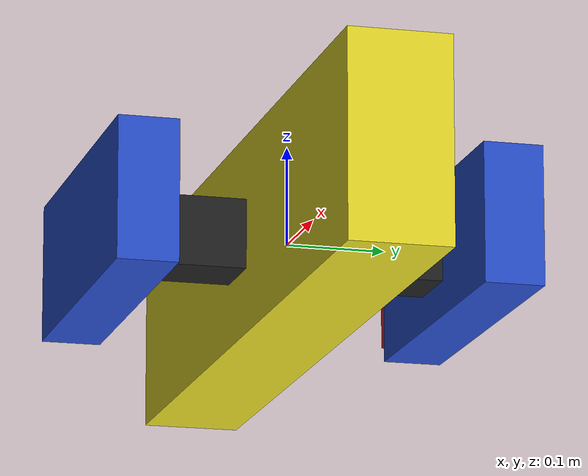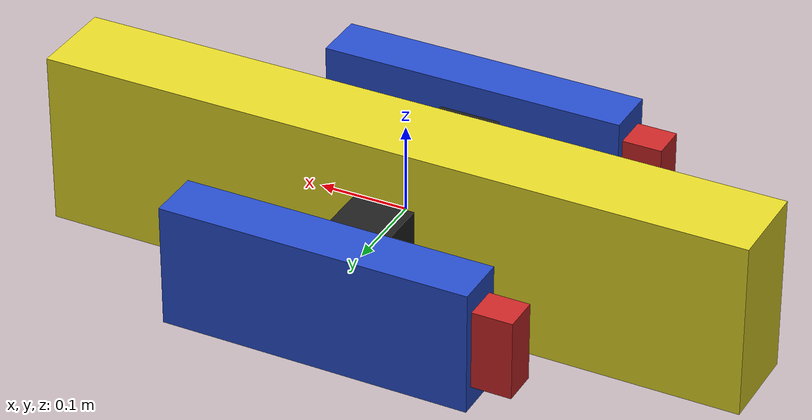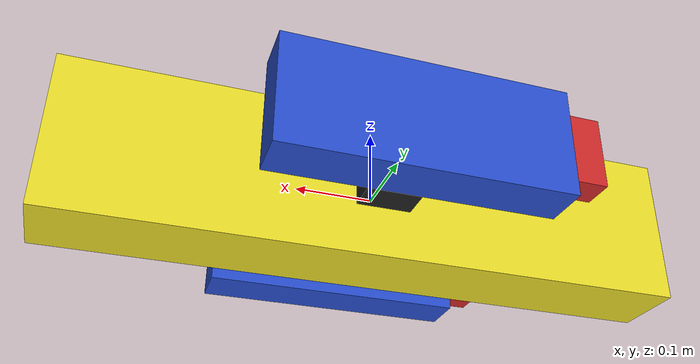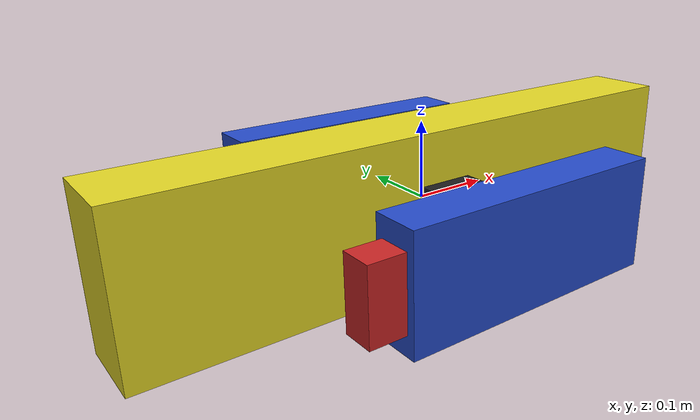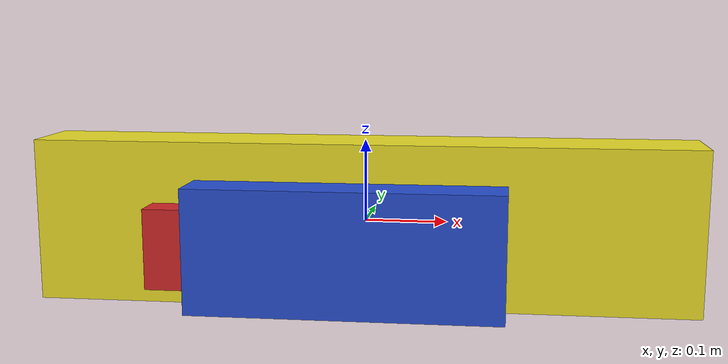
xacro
<?xml version="1.0"?>

<robot xmlns:xacro="http://www.ros.org/wiki/xacro" name="myrobot">

<!-- XACRO    -->

<xacro:property name="axle_dimensions" value="0.07 0.3 0.07"/>
<xacro:property name="thruster_dimensions" value="0.35 0.06 0.14"/>
<xacro:property name="exhaust_dimensions" value="0.05 0.04 0.09"/>
<xacro:property name="axis_orientation" value="0 1 0"/>
<xacro:property name="base_dimensions" value="0.81 0.1 0.2"/>

<!--BASE DEFINITION     -->

    <link name="base_link">

        <collision>
            <geometry>
                <box size="0.81 0.1 0.2"/>
            </geometry>
        </collision>

        <visual>
            <geometry>
                <box size="0.81 0.1 0.2"/>
            </geometry>
        </visual>

        <inertial>
            <mass value="10"/>
            <inertia ixx="0.4" ixy="0.0" ixz="0.0" iyy="0.4" iyz="0.0" izz="0.2"/>
        </inertial>
    </link>
    <gazebo reference="base_link">
        <material>Gazebo/Yellow</material>
    </gazebo>

<!--AXLE -->

    <xacro:macro name="axle" params="prefix reflect">
        <link name="${prefix}_axle">
        <collision>
                <geometry>
                    <box size="${axle_dimensions}"/>
                </geometry>
            </collision>
            <visual>
                <geometry>
                    <box size="${axle_dimensions}"/>
                </geometry>
            </visual>

            <inertial>
                <mass value="3"/>
                <inertia ixx="0.4" ixy="0.0" ixz="0.0" iyy="0.4" iyz="0.0" izz="0.2"/>
            </inertial>
        </link>
        <joint name="base_to_${prefix}_axle" type="fixed">
            <parent link="base_link"/>
            <child link="${prefix}_axle"/>
            <origin xyz="${reflect*0} 0 0"/>
        </joint>
        <gazebo reference="${prefix}_axle">
            <material>Gazebo/Black</material>
        </gazebo>
    </xacro:macro>

    <xacro:axle prefix="centre" reflect="-1"/>

<!-- THURSTER -->

    <xacro:macro name="thruster" params="prefix suffix reflect">
        <link name="${prefix}_${suffix}_thruster">
        <collision>
                <geometry>
                    <box size="${thruster_dimensions}"/>
                </geometry>
            </collision>
            <visual>
                <geometry>
                    <box size="${thruster_dimensions}"/>
                </geometry>
                <origin xyz="0 ${reflect*0.03} 0"/>
            </visual>

            <inertial>
                <mass value="2"/>
                <inertia ixx="0.4" ixy="0.0" ixz="0.0" iyy="0.4" iyz="0.0" izz="0.2"/>
            </inertial>
        </link>
        <joint name="base_to_${prefix}_${suffix}_thruster" type="continuous">
            <parent link="${prefix}_axle"/>
            <child link="${prefix}_${suffix}_thruster"/>
            <axis xyz="${axis_orientation}"/>
            <origin xyz="0 ${reflect*0.15} 0"/>
        </joint>
        <gazebo reference="${prefix}_${suffix}_thruster">
            <material>Gazebo/Blue</material>
        </gazebo>
        <transmission name="${prefix}_${suffix}_thruster_transmission">
            <type>transmission_interface/SimpleTransmission</type>
            <actuator name="${prefix}_${suffix}_thruster_motor">
                <mechanicalReduction>1</mechanicalReduction>
            </actuator>
            <joint name="base_to_${prefix}_${suffix}_thruster">
                <hardwareInterface>hardware_interface/PositionJointInterface</hardwareInterface>
            </joint>
        </transmission>
    </xacro:macro>

    <xacro:thruster prefix="centre"  suffix="left"  reflect="1"  />
    <xacro:thruster prefix="centre"  suffix="right" reflect="-1" />

<!-- EXHAUST -->

    <xacro:macro name="exhaust" params="prefix suffix reflect">
        <link name="${prefix}_${suffix}_exhaust">
        <collision>
                <geometry>
                    <box size="${exhaust_dimensions}"/>
                </geometry>
            </collision>
            <visual>
                <geometry>
                    <box size="${exhaust_dimensions}"/>
                </geometry>
            </visual>

            <inertial>
                <mass value="1"/>
                <inertia ixx="0.4" ixy="0.0" ixz="0.0" iyy="0.4" iyz="0.0" izz="0.2"/>
            </inertial>
        </link>
        <joint name="base_to_${prefix}_${suffix}_exhaust" type="fixed">
            <parent link="${prefix}_${suffix}_thruster"/>
            <child link="${prefix}_${suffix}_exhaust"/>
            <origin xyz="-0.195 ${reflect*0.03} 0"/>
        </joint>
        <gazebo reference="${prefix}_${suffix}_exhaust">
            <material>Gazebo/Red</material>
        </gazebo>
    </xacro:macro>

    <xacro:exhaust prefix="centre"  suffix="left"  reflect="1"  />
    <xacro:exhaust prefix="centre"  suffix="right" reflect="-1" />

<!--####################- -         TRANSMISSIONS        - -####################-->

    <gazebo>
        <plugin name="gazebo_ros_control" filename="libgazebo_ros_control.so">
          <robotNamespace>/</robotNamespace>
        </plugin>
    </gazebo>

</robot>
